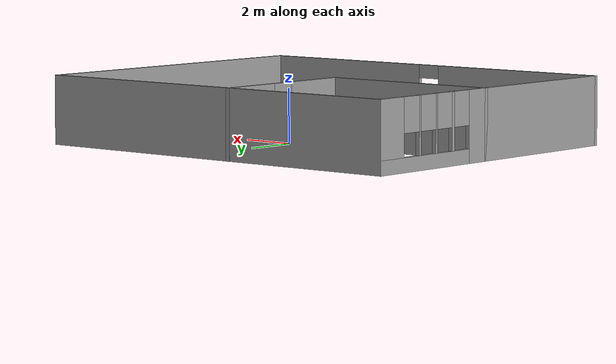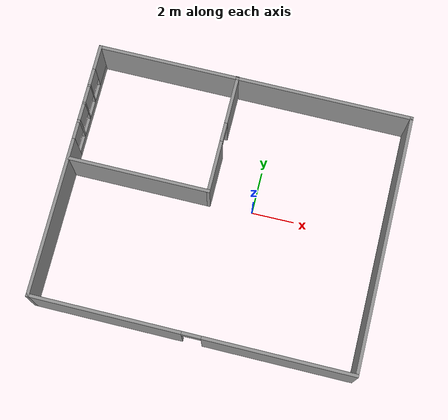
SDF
<?xml version='1.0'?>
<sdf version='1.7'>
  <model name='Nursing_Home'>
    <pose>-1.24732 -0.549378 0 0 -0 0</pose>
    <link name='Wall_22'>
      <pose>-7.425 -0.006674 0 0 -0 1.5708</pose>
      <visual name='Wall_22_Visual_0'>
        <pose>-2.35623 0 1.25 0 -0 0</pose>
        <geometry>
          <box>
            <size>7.53754 0.15 2.5</size>
          </box>
        </geometry>
        <material>
          <script>
            <uri>file://media/materials/scripts/gazebo.material</uri>
            <name>Gazebo/Grey</name>
          </script>
          <ambient>1 1 1 1</ambient>
        </material>
        <meta>
          <layer>0</layer>
        </meta>
      </visual>
      <collision name='Wall_22_Collision_0'>
        <geometry>
          <box>
            <size>7.53754 0.15 2.5</size>
          </box>
        </geometry>
        <pose>-2.35623 0 1.25 0 -0 0</pose>
      </collision>
      <visual name='Wall_22_Visual_1'>
        <pose>3.76877 0 0.25 0 -0 0</pose>
        <geometry>
          <box>
            <size>4.71246 0.15 0.5</size>
          </box>
        </geometry>
        <material>
          <script>
            <uri>file://media/materials/scripts/gazebo.material</uri>
            <name>Gazebo/Grey</name>
          </script>
          <ambient>1 1 1 1</ambient>
        </material>
        <meta>
          <layer>0</layer>
        </meta>
      </visual>
      <collision name='Wall_22_Collision_1'>
        <geometry>
          <box>
            <size>4.71246 0.15 0.5</size>
          </box>
        </geometry>
        <pose>3.76877 0 0.25 0 -0 0</pose>
      </collision>
      <visual name='Wall_22_Visual_2'>
        <pose>2.27778 0 1.5 0 -0 0</pose>
        <geometry>
          <box>
            <size>0.130478 0.15 2</size>
          </box>
        </geometry>
        <material>
          <script>
            <uri>file://media/materials/scripts/gazebo.material</uri>
            <name>Gazebo/Grey</name>
          </script>
          <ambient>1 1 1 1</ambient>
        </material>
        <meta>
          <layer>0</layer>
        </meta>
      </visual>
      <collision name='Wall_22_Collision_2'>
        <geometry>
          <box>
            <size>0.130478 0.15 2</size>
          </box>
        </geometry>
        <pose>2.27778 0 1.5 0 -0 0</pose>
      </collision>
      <visual name='Wall_22_Visual_3'>
        <pose>3.185 0 1.5 0 -0 0</pose>
        <geometry>
          <box>
            <size>0.083955 0.15 2</size>
          </box>
        </geometry>
        <material>
          <script>
            <uri>file://media/materials/scripts/gazebo.material</uri>
            <name>Gazebo/Grey</name>
          </script>
          <ambient>1 1 1 1</ambient>
        </material>
        <meta>
          <layer>0</layer>
        </meta>
      </visual>
      <collision name='Wall_22_Collision_3'>
        <geometry>
          <box>
            <size>0.083955 0.15 2</size>
          </box>
        </geometry>
        <pose>3.185 0 1.5 0 -0 0</pose>
      </collision>
      <visual name='Wall_22_Visual_4'>
        <pose>4.06895 0 1.5 0 -0 0</pose>
        <geometry>
          <box>
            <size>0.083954 0.15 2</size>
          </box>
        </geometry>
        <material>
          <script>
            <uri>file://media/materials/scripts/gazebo.material</uri>
            <name>Gazebo/Grey</name>
          </script>
          <ambient>1 1 1 1</ambient>
        </material>
        <meta>
          <layer>0</layer>
        </meta>
      </visual>
      <collision name='Wall_22_Collision_4'>
        <geometry>
          <box>
            <size>0.083954 0.15 2</size>
          </box>
        </geometry>
        <pose>4.06895 0 1.5 0 -0 0</pose>
      </collision>
      <visual name='Wall_22_Visual_5'>
        <pose>5.51796 0 1.5 0 -0 0</pose>
        <geometry>
          <box>
            <size>1.21407 0.15 2</size>
          </box>
        </geometry>
        <material>
          <script>
            <uri>file://media/materials/scripts/gazebo.material</uri>
            <name>Gazebo/Grey</name>
          </script>
          <ambient>1 1 1 1</ambient>
        </material>
        <meta>
          <layer>0</layer>
        </meta>
      </visual>
      <collision name='Wall_22_Collision_5'>
        <geometry>
          <box>
            <size>1.21407 0.15 2</size>
          </box>
        </geometry>
        <pose>5.51796 0 1.5 0 -0 0</pose>
      </collision>
      <visual name='Wall_22_Visual_6'>
        <pose>1.81254 0 1.9 0 -0 0</pose>
        <geometry>
          <box>
            <size>0.8 0.15 1.2</size>
          </box>
        </geometry>
        <material>
          <script>
            <uri>file://media/materials/scripts/gazebo.material</uri>
            <name>Gazebo/Grey</name>
          </script>
          <ambient>1 1 1 1</ambient>
        </material>
        <meta>
          <layer>0</layer>
        </meta>
      </visual>
      <collision name='Wall_22_Collision_6'>
        <geometry>
          <box>
            <size>0.8 0.15 1.2</size>
          </box>
        </geometry>
        <pose>1.81254 0 1.9 0 -0 0</pose>
      </collision>
      <visual name='Wall_22_Visual_7'>
        <pose>2.74302 0 1.9 0 -0 0</pose>
        <geometry>
          <box>
            <size>0.8 0.15 1.2</size>
          </box>
        </geometry>
        <material>
          <script>
            <uri>file://media/materials/scripts/gazebo.material</uri>
            <name>Gazebo/Grey</name>
          </script>
          <ambient>1 1 1 1</ambient>
        </material>
        <meta>
          <layer>0</layer>
        </meta>
      </visual>
      <collision name='Wall_22_Collision_7'>
        <geometry>
          <box>
            <size>0.8 0.15 1.2</size>
          </box>
        </geometry>
        <pose>2.74302 0 1.9 0 -0 0</pose>
      </collision>
      <visual name='Wall_22_Visual_8'>
        <pose>3.62697 0 1.9 0 -0 0</pose>
        <geometry>
          <box>
            <size>0.8 0.15 1.2</size>
          </box>
        </geometry>
        <material>
          <script>
            <uri>file://media/materials/scripts/gazebo.material</uri>
            <name>Gazebo/Grey</name>
          </script>
          <ambient>1 1 1 1</ambient>
        </material>
        <meta>
          <layer>0</layer>
        </meta>
      </visual>
      <collision name='Wall_22_Collision_8'>
        <geometry>
          <box>
            <size>0.8 0.15 1.2</size>
          </box>
        </geometry>
        <pose>3.62697 0 1.9 0 -0 0</pose>
      </collision>
      <visual name='Wall_22_Visual_9'>
        <pose>4.51093 0 1.9 0 -0 0</pose>
        <geometry>
          <box>
            <size>0.8 0.15 1.2</size>
          </box>
        </geometry>
        <material>
          <script>
            <uri>file://media/materials/scripts/gazebo.material</uri>
            <name>Gazebo/Grey</name>
          </script>
          <ambient>1 1 1 1</ambient>
        </material>
        <meta>
          <layer>0</layer>
        </meta>
      </visual>
      <collision name='Wall_22_Collision_9'>
        <geometry>
          <box>
            <size>0.8 0.15 1.2</size>
          </box>
        </geometry>
        <pose>4.51093 0 1.9 0 -0 0</pose>
      </collision>
    </link>
    <link name='Wall_23'>
      <collision name='Wall_23_Collision'>
        <geometry>
          <box>
            <size>15 0.15 2.5</size>
          </box>
        </geometry>
        <pose>0 0 1.25 0 -0 0</pose>
      </collision>
      <visual name='Wall_23_Visual'>
        <pose>0 0 1.25 0 -0 0</pose>
        <geometry>
          <box>
            <size>15 0.15 2.5</size>
          </box>
        </geometry>
        <material>
          <script>
            <uri>file://media/materials/scripts/gazebo.material</uri>
            <name>Gazebo/Grey</name>
          </script>
          <ambient>1 1 1 1</ambient>
        </material>
        <meta>
          <layer>0</layer>
        </meta>
      </visual>
      <pose>-0 6.04333 0 0 -0 0</pose>
    </link>
    <link name='Wall_24'>
      <collision name='Wall_24_Collision'>
        <geometry>
          <box>
            <size>12.25 0.15 2.5</size>
          </box>
        </geometry>
        <pose>0 0 1.25 0 -0 0</pose>
      </collision>
      <visual name='Wall_24_Visual'>
        <pose>0 0 1.25 0 -0 0</pose>
        <geometry>
          <box>
            <size>12.25 0.15 2.5</size>
          </box>
        </geometry>
        <material>
          <script>
            <uri>file://media/materials/scripts/gazebo.material</uri>
            <name>Gazebo/Grey</name>
          </script>
          <ambient>1 1 1 1</ambient>
        </material>
        <meta>
          <layer>0</layer>
        </meta>
      </visual>
      <pose>7.425 -0.006674 0 0 -0 -1.5708</pose>
    </link>
    <link name='Wall_25'>
      <pose>-0 -6.05667 0 0 -0 3.14159</pose>
      <visual name='Wall_25_Visual_0'>
        <pose>-3.98441 0 1.25 0 -0 0</pose>
        <geometry>
          <box>
            <size>7.03117 0.15 2.5</size>
          </box>
        </geometry>
        <material>
          <script>
            <uri>file://media/materials/scripts/gazebo.material</uri>
            <name>Gazebo/Grey</name>
          </script>
          <ambient>1 1 1 1</ambient>
        </material>
        <meta>
          <layer>0</layer>
        </meta>
      </visual>
      <collision name='Wall_25_Collision_0'>
        <geometry>
          <box>
            <size>7.03117 0.15 2.5</size>
          </box>
        </geometry>
        <pose>-3.98441 0 1.25 0 -0 0</pose>
      </collision>
      <visual name='Wall_25_Visual_1'>
        <pose>3.96559 0 1.25 0 -0 0</pose>
        <geometry>
          <box>
            <size>7.06883 0.15 2.5</size>
          </box>
        </geometry>
        <material>
          <script>
            <uri>file://media/materials/scripts/gazebo.material</uri>
            <name>Gazebo/Grey</name>
          </script>
          <ambient>1 1 1 1</ambient>
        </material>
        <meta>
          <layer>0</layer>
        </meta>
      </visual>
      <collision name='Wall_25_Collision_1'>
        <geometry>
          <box>
            <size>7.06883 0.15 2.5</size>
          </box>
        </geometry>
        <pose>3.96559 0 1.25 0 -0 0</pose>
      </collision>
      <visual name='Wall_25_Visual_2'>
        <pose>-0.018826 0 2.25 0 -0 0</pose>
        <geometry>
          <box>
            <size>0.9 0.15 0.5</size>
          </box>
        </geometry>
        <material>
          <script>
            <uri>file://media/materials/scripts/gazebo.material</uri>
            <name>Gazebo/Grey</name>
          </script>
          <ambient>1 1 1 1</ambient>
        </material>
        <meta>
          <layer>0</layer>
        </meta>
      </visual>
      <collision name='Wall_25_Collision_2'>
        <geometry>
          <box>
            <size>0.9 0.15 0.5</size>
          </box>
        </geometry>
        <pose>-0.018826 0 2.25 0 -0 0</pose>
      </collision>
    </link>
    <link name='Wall_27'>
      <collision name='Wall_27_Collision'>
        <geometry>
          <box>
            <size>6.75 0.15 2.5</size>
          </box>
        </geometry>
        <pose>0 0 1.25 0 -0 0</pose>
      </collision>
      <visual name='Wall_27_Visual'>
        <pose>0 0 1.25 0 -0 0</pose>
        <geometry>
          <box>
            <size>6.75 0.15 2.5</size>
          </box>
        </geometry>
        <material>
          <script>
            <uri>file://media/materials/scripts/gazebo.material</uri>
            <name>Gazebo/Grey</name>
          </script>
          <ambient>1 1 1 1</ambient>
        </material>
        <meta>
          <layer>0</layer>
        </meta>
      </visual>
      <pose>-4.125 0.456674 0 0 -0 0</pose>
    </link>
    <link name='Wall_28'>
      <pose>-0.825 3.25667 0 0 -0 1.5708</pose>
      <visual name='Wall_28_Visual_0'>
        <pose>-1.62026 0 1.25 0 -0 0</pose>
        <geometry>
          <box>
            <size>2.50948 0.15 2.5</size>
          </box>
        </geometry>
        <material>
          <script>
            <uri>file://media/materials/scripts/gazebo.material</uri>
            <name>Gazebo/Grey</name>
          </script>
          <ambient>1 1 1 1</ambient>
        </material>
        <meta>
          <layer>0</layer>
        </meta>
      </visual>
      <collision name='Wall_28_Collision_0'>
        <geometry>
          <box>
            <size>2.50948 0.15 2.5</size>
          </box>
        </geometry>
        <pose>-1.62026 0 1.25 0 -0 0</pose>
      </collision>
      <visual name='Wall_28_Visual_1'>
        <pose>1.70474 0 1.25 0 -0 0</pose>
        <geometry>
          <box>
            <size>2.34052 0.15 2.5</size>
          </box>
        </geometry>
        <material>
          <script>
            <uri>file://media/materials/scripts/gazebo.material</uri>
            <name>Gazebo/Grey</name>
          </script>
          <ambient>1 1 1 1</ambient>
        </material>
        <meta>
          <layer>0</layer>
        </meta>
      </visual>
      <collision name='Wall_28_Collision_1'>
        <geometry>
          <box>
            <size>2.34052 0.15 2.5</size>
          </box>
        </geometry>
        <pose>1.70474 0 1.25 0 -0 0</pose>
      </collision>
      <visual name='Wall_28_Visual_2'>
        <pose>0.084483 0 2.25 0 -0 0</pose>
        <geometry>
          <box>
            <size>0.9 0.15 0.5</size>
          </box>
        </geometry>
        <material>
          <script>
            <uri>file://media/materials/scripts/gazebo.material</uri>
            <name>Gazebo/Grey</name>
          </script>
          <ambient>1 1 1 1</ambient>
        </material>
        <meta>
          <layer>0</layer>
        </meta>
      </visual>
      <collision name='Wall_28_Collision_2'>
        <geometry>
          <box>
            <size>0.9 0.15 0.5</size>
          </box>
        </geometry>
        <pose>0.084483 0 2.25 0 -0 0</pose>
      </collision>
    </link>
    <static>1</static>
  </model>
</sdf>
